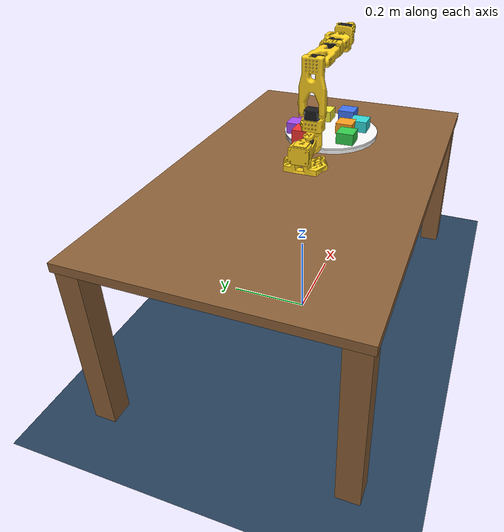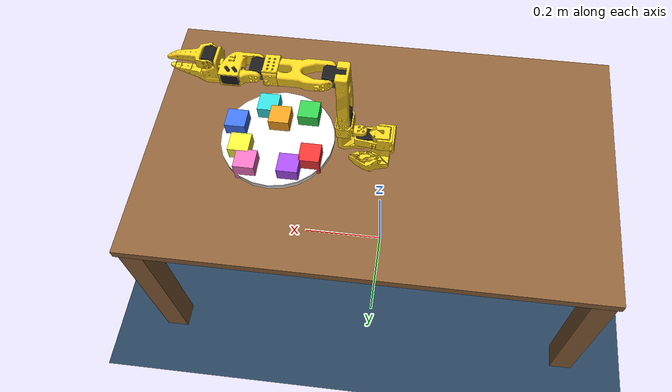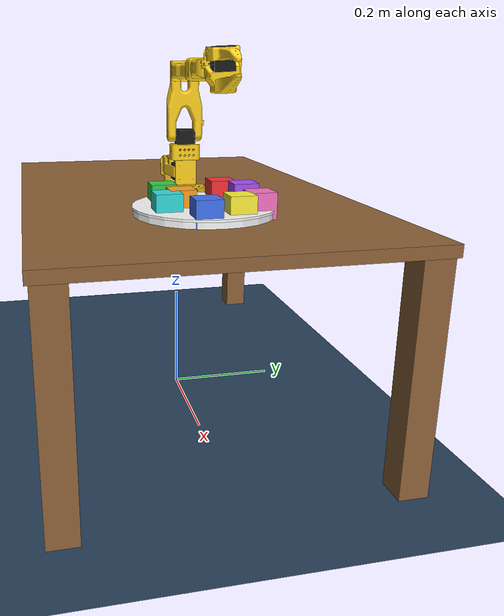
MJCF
<mujoco model="scene">
    <include file="so101.xml" />

    <visual>
        <headlight diffuse="0.6 0.6 0.6" ambient="0.3 0.3 0.3" specular="0 0 0" />
        <rgba haze="0.15 0.25 0.35 1" />
        <global azimuth="160" elevation="-20" />
    </visual>

    <asset>
        <texture type="skybox" builtin="gradient" rgb1="0.3 0.5 0.7" rgb2="0 0 0" width="512"
            height="3072" />
        <texture type="2d" name="groundplane" builtin="checker" mark="edge" rgb1="0.2 0.3 0.4"
            rgb2="0.1 0.2 0.3"
            markrgb="0.8 0.8 0.8" width="300" height="300" />

        <material name="groundplane" texture="groundplane" texuniform="true" texrepeat="5 5" reflectance="0.2" />

        <!-- 桌子、盘子材质 -->
        <material name="table_wood" rgba="0.55 0.38 0.22 1" reflectance="0.1"/>
        <material name="plate_white" rgba="0.98 0.98 0.98 1" reflectance="0.3"/>

        <!-- 各种颜色的小方块材质 -->
        <material name="cube_red"    rgba="0.95 0.20 0.20 1"/>
        <material name="cube_orange" rgba="0.98 0.62 0.12 1"/>
        <material name="cube_yellow" rgba="0.98 0.94 0.22 1"/>
        <material name="cube_green"  rgba="0.20 0.80 0.30 1"/>
        <material name="cube_cyan"   rgba="0.20 0.85 0.85 1"/>
        <material name="cube_blue"   rgba="0.25 0.45 0.95 1"/>
        <material name="cube_purple" rgba="0.65 0.30 0.95 1"/>
        <material name="cube_pink"   rgba="0.95 0.45 0.75 1"/>
    </asset>

    <default>
        <geom friction="1.5 0.005 0.0001" />
    </default>

    <worldbody>
        <light pos="0 0 3.5" dir="0 0 -1" directional="true" />
        <geom name="floor" size="0 0 0.05" pos="0 0 0" type="plane" material="groundplane" />

        <!-- 桌子静态刚体 -->
        <body name="table_base" pos="0 0 0">
            <!-- 桌面：长1.0m 宽0.6m 厚0.02m，离地高度0.4m -->
            <geom type="box" name="table_top" pos="0 0 0.4" size="0.5 0.3 0.01" material="table_wood"/>
            <!-- 四条桌腿 -->
            <geom type="box" pos="-0.47 -0.27 0.2" size="0.025 0.025 0.2" material="table_wood"/>
            <geom type="box" pos="0.47 -0.27 0.2" size="0.025 0.025 0.2" material="table_wood"/>
            <geom type="box" pos="-0.47 0.27 0.2" size="0.025 0.025 0.2" material="table_wood"/>
            <geom type="box" pos="0.47 0.27 0.2" size="0.025 0.025 0.2" material="table_wood"/>
        </body>

        <!-- 白色圆形盘子放在桌面右侧 -->
        <body name="plate_body" pos="0.22 0 0.415">
            <geom type="cylinder" size="0.12 0.006" material="plate_white"/>
            <geom type="cylinder" size="0.122 0.002" pos="0 0 0.008" material="plate_white"/>
        </body>

        <!-- 各种颜色的小方块（可自由移动，散布在桌面上） -->
        <body name="cube_red" pos="0.14 0.05 0.432">
            <freejoint/>
            <geom type="box" size="0.022 0.022 0.022" material="cube_red"/>
        </body>
        <body name="cube_orange" pos="0.22 -0.04 0.432">
            <freejoint/>
            <geom type="box" size="0.022 0.022 0.022" material="cube_orange"/>
        </body>
        <body name="cube_yellow" pos="0.29 0.04 0.432">
            <freejoint/>
            <geom type="box" size="0.022 0.022 0.022" material="cube_yellow"/>
        </body>
        <body name="cube_green" pos="0.16 -0.06 0.432">
            <freejoint/>
            <geom type="box" size="0.022 0.022 0.022" material="cube_green"/>
        </body>
        <body name="cube_cyan" pos="0.25 -0.07 0.432">
            <freejoint/>
            <geom type="box" size="0.022 0.022 0.022" material="cube_cyan"/>
        </body>
        <body name="cube_blue" pos="0.31 -0.02 0.432">
            <freejoint/>
            <geom type="box" size="0.022 0.022 0.022" material="cube_blue"/>
        </body>
        <body name="cube_purple" pos="0.18 0.08 0.432">
            <freejoint/>
            <geom type="box" size="0.022 0.022 0.022" material="cube_purple"/>
        </body>
        <body name="cube_pink" pos="0.27 0.08 0.432">
            <freejoint/>
            <geom type="box" size="0.022 0.022 0.022" material="cube_pink"/>
        </body>

        <!-- 俯视相机：位于工作区正上方，朝 -Z 俯视桌面 -->
        <camera name="overhead" pos="0.20 0.0 1.0" mode="fixed" fovy="50" quat="1 0 0 0"/>
    </worldbody>
</mujoco>

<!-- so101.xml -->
<!-- Generated using onshape-to-robot -->
<!-- Onshape https://cad.onshape.com/documents/7715cc284bb430fe6dab4ffd/w/4fd0791b683777b02f8d975a/e/826c553ede3b7592eb9ca800 -->
<mujoco model="so101_new_calib">
  <compiler angle="radian" meshdir="assets" autolimits="true"/>
  <default>
    <default class="so101_new_calib">
      <joint damping="1" frictionloss="0.1" armature="0.005"/>
      <position kp="50"/>
      <default class="visual">
        <geom type="mesh" contype="0" conaffinity="0" group="2"/>
      </default>
      <default class="collision">
        <geom group="3"/>
      </default>
    </default>
  </default>
  <!-- Additional joints_properties.xml -->
  <default>
    <default class="sts3215">
      <geom contype="0" conaffinity="0"/>
      <joint damping="0.60" frictionloss="0.052" armature="0.028"/>
      <position kp="998.22" kv="2.731" forcerange="-2.94 2.94"/>
    </default>
    <default class="backlash">
      <!-- +/- 0.5° of backlash -->
      <joint damping="0.01" frictionloss="0" armature="0.01" limited="true" range="-0.008726646259971648 0.008726646259971648"/>
    </default>
  </default>
  <worldbody>
    <!-- Link base -->
    <body name="base" pos="0 0 0.41" quat="1 0 0 0" childclass="so101_new_calib">
      <inertial pos="0.0137179 -5.19711e-05 0.0334843" mass="0.147" fullinertia="0.000114686 0.000136117 0.000130364 -4.59787e-07 4.97151e-06 9.75275e-08"/>
      <!-- Part base_motor_holder_so101_v1 -->
      <geom type="mesh" class="visual" pos="-0.00636471 -9.94414e-05 -0.0024" quat="0.5 0.5 0.5 0.5" mesh="base_motor_holder_so101_v1" material="base_motor_holder_so101_v1_material"/>
      <!-- Part base_so101_v2 -->
      <geom type="mesh" class="visual" pos="-0.00636471 -8.97657e-09 -0.0024" quat="0.5 0.5 0.5 0.5" mesh="base_so101_v2" material="base_so101_v2_material"/>
      <!-- Part sts3215_03a_v1 -->
      <geom type="mesh" class="visual" pos="0.0263353 -8.97657e-09 0.0437" quat="1 -2.85511e-16 -9.64433e-17 6.12908e-16" mesh="sts3215_03a_v1" material="sts3215_03a_v1_material"/>
      <!-- Part waveshare_mounting_plate_so101_v2 -->
      <geom type="mesh" class="visual" pos="-0.0309827 -0.000199441 0.0474" quat="0.5 0.5 0.5 0.5" mesh="waveshare_mounting_plate_so101_v2" material="waveshare_mounting_plate_so101_v2_material"/>
      <!-- Frame baseframe -->
      <site group="3" name="baseframe" pos="8.67362e-19 9.55596e-18 3.46945e-18" quat="1 -8.17396e-19 3.78392e-17 2.22045e-16"/>
      <!-- Link shoulder -->
      <body name="shoulder" pos="0.0388353 -8.97657e-09 0.0624" quat="3.56167e-16 1.22818e-15 -1 -4.14635e-16">
        <!-- Joint from base to shoulder -->
        <joint axis="0 0 1" name="shoulder_pan" type="hinge" range="-1.9198621771937616 1.9198621771937634" class="sts3215"/>
        <inertial pos="-0.0307604 -1.66727e-05 -0.0252713" mass="0.100006" fullinertia="8.3759e-05 8.10403e-05 2.39783e-05 7.55525e-08 -1.16342e-06 1.54663e-07"/>
        <!-- Part sts3215_03a_v1_2 -->
        <geom type="mesh" class="visual" pos="-0.0303992 0.000422241 -0.0417" quat="0.5 0.5 0.5 -0.5" mesh="sts3215_03a_v1" material="sts3215_03a_v1_material"/>
        <geom type="mesh" class="collision" pos="-0.0303992 0.000422241 -0.0417" quat="0.5 0.5 0.5 -0.5" mesh="sts3215_03a_v1" material="sts3215_03a_v1_material"/>
        <!-- Part motor_holder_so101_base_v1 -->
        <geom type="mesh" class="visual" pos="-0.0675992 -0.000177759 0.0158499" quat="0.5 0.5 -0.5 0.5" mesh="motor_holder_so101_base_v1" material="motor_holder_so101_base_v1_material"/>
        <geom type="mesh" class="collision" pos="-0.0675992 -0.000177759 0.0158499" quat="0.5 0.5 -0.5 0.5" mesh="motor_holder_so101_base_v1" material="motor_holder_so101_base_v1_material"/>
        <!-- Part rotation_pitch_so101_v1 -->
        <geom type="mesh" class="visual" pos="0.0122008 2.22413e-05 0.0464" quat="0.707107 -0.707107 -0 8.3163e-34" mesh="rotation_pitch_so101_v1" material="rotation_pitch_so101_v1_material"/>
        <geom type="mesh" class="collision" pos="0.0122008 2.22413e-05 0.0464" quat="0.707107 -0.707107 -0 8.3163e-34" mesh="rotation_pitch_so101_v1" material="rotation_pitch_so101_v1_material"/>
        <!-- Link upper_arm -->
        <body name="upper_arm" pos="-0.0303992 -0.0182778 -0.0542" quat="0.5 -0.5 -0.5 -0.5">
          <!-- Joint from shoulder to upper_arm -->
          <joint axis="0 0 1" name="shoulder_lift" type="hinge" range="-1.7453292519943224 1.7453292519943366" class="sts3215"/>
          <inertial pos="-0.0898471 -0.00838224 0.0184089" mass="0.103" fullinertia="4.08002e-05 0.000147318 0.000142487 -1.97819e-05 -4.03016e-08 8.97326e-09"/>
          <!-- Part sts3215_03a_v1_3 -->
          <geom type="mesh" class="visual" pos="-0.11257 -0.0155 0.0187" quat="4.56308e-16 -0.707107 0.707107 -1.37383e-16" mesh="sts3215_03a_v1" material="sts3215_03a_v1_material"/>
          <geom type="mesh" class="collision" pos="-0.11257 -0.0155 0.0187" quat="4.56308e-16 -0.707107 0.707107 -1.37383e-16" mesh="sts3215_03a_v1" material="sts3215_03a_v1_material"/>
          <!-- Part upper_arm_so101_v1 -->
          <geom type="mesh" class="visual" pos="-0.065085 0.012 0.0182" quat="0 1 0 0" mesh="upper_arm_so101_v1" material="upper_arm_so101_v1_material"/>
          <geom type="mesh" class="collision" pos="-0.065085 0.012 0.0182" quat="0 1 0 0" mesh="upper_arm_so101_v1" material="upper_arm_so101_v1_material"/>
          <!-- Link lower_arm -->
          <body name="lower_arm" pos="-0.11257 -0.028 1.73763e-16" quat="0.707107 -5.98613e-17 -2.58051e-17 0.707107">
            <!-- Joint from upper_arm to lower_arm -->
            <!-- Note: 5-degree calibration offset applied to joint range -->
            <joint axis="0 0 1" name="elbow_flex" type="hinge" range="-1.69 1.69" class="sts3215"/>
            <inertial pos="-0.0980701 0.00324376 0.0182831" mass="0.104" fullinertia="2.87438e-05 0.000159844 0.00014529 7.41152e-06 1.26409e-06 -4.90188e-08"/>
            <!-- Part under_arm_so101_v1 -->
            <geom type="mesh" class="visual" pos="-0.0648499 -0.032 0.0182" quat="0 1 0 0" mesh="under_arm_so101_v1" material="under_arm_so101_v1_material"/>
            <geom type="mesh" class="collision" pos="-0.0648499 -0.032 0.0182" quat="0 1 0 0" mesh="under_arm_so101_v1" material="under_arm_so101_v1_material"/>
            <!-- Part motor_holder_so101_wrist_v1 -->
            <geom type="mesh" class="visual" pos="-0.0648499 -0.032 0.018" quat="3.92687e-16 -1 -1.9186e-15 -6.38378e-16" mesh="motor_holder_so101_wrist_v1" material="motor_holder_so101_wrist_v1_material"/>
            <geom type="mesh" class="collision" pos="-0.0648499 -0.032 0.018" quat="3.92687e-16 -1 -1.9186e-15 -6.38378e-16" mesh="motor_holder_so101_wrist_v1" material="motor_holder_so101_wrist_v1_material"/>
            <!-- Part sts3215_03a_v1_4 -->
            <geom type="mesh" class="visual" pos="-0.1224 0.0052 0.0187" quat="7.21645e-16 1.56949e-15 1 -3.33067e-16" mesh="sts3215_03a_v1" material="sts3215_03a_v1_material"/>
            <geom type="mesh" class="collision" pos="-0.1224 0.0052 0.0187" quat="7.21645e-16 1.56949e-15 1 -3.33067e-16" mesh="sts3215_03a_v1" material="sts3215_03a_v1_material"/>
            <!-- Link wrist -->
            <body name="wrist" pos="-0.1349 0.0052 3.62355e-17" quat="0.707107 9.58722e-16 -7.51313e-16 -0.707107">
              <!-- Joint from lower_arm to wrist -->
              <joint axis="0 0 1" name="wrist_flex" type="hinge" range="-1.6580628494556928 1.6580627293335335" class="sts3215"/>
              <inertial pos="-0.000103312 -0.0386143 0.0281156" mass="0.079" fullinertia="3.68263e-05 2.5391e-05 2.1e-05 1.7893e-08 -5.28128e-08 3.6412e-06"/>
              <!-- Part sts3215_03a_no_horn_v1 -->
              <geom type="mesh" class="visual" pos="8.32667e-17 -0.0424 0.0306" quat="0.5 0.5 0.5 -0.5" mesh="sts3215_03a_no_horn_v1" material="sts3215_03a_no_horn_v1_material"/>
              <geom type="mesh" class="collision" pos="8.32667e-17 -0.0424 0.0306" quat="0.5 0.5 0.5 -0.5" mesh="sts3215_03a_no_horn_v1" material="sts3215_03a_no_horn_v1_material"/>
              <!-- Part wrist_roll_pitch_so101_v2 -->
              <geom type="mesh" class="visual" pos="0 -0.028 0.0181" quat="0.5 -0.5 -0.5 -0.5" mesh="wrist_roll_pitch_so101_v2" material="wrist_roll_pitch_so101_v2_material"/>
              <geom type="mesh" class="collision" pos="0 -0.028 0.0181" quat="0.5 -0.5 -0.5 -0.5" mesh="wrist_roll_pitch_so101_v2" material="wrist_roll_pitch_so101_v2_material"/>
              <!-- Link gripper -->
              <body name="gripper" pos="5.55112e-17 -0.0611 0.0181" quat="0.0172091 -0.0172091 0.706897 0.706897">
                <!-- Joint from wrist to gripper -->
                <joint axis="0 0 1" name="wrist_roll" type="hinge" range="-2.7438472969992493 2.841206309382605" class="sts3215"/>
                <inertial pos="0.000213627 0.000245138 -0.025187" mass="0.087" fullinertia="2.75087e-05 4.33657e-05 3.45059e-05 -3.35241e-07 -5.7352e-06 -5.17847e-08"/>
                <!-- Part sts3215_03a_v1_5 -->
                <geom type="mesh" class="visual" pos="0.0077 0.0001 -0.0234" quat="0.707107 -0.707107 1.66015e-15 6.45094e-15" mesh="sts3215_03a_v1" material="sts3215_03a_v1_material"/>
                <geom type="mesh" class="collision" pos="0.0077 0.0001 -0.0234" quat="0.707107 -0.707107 1.66015e-15 6.45094e-15" mesh="sts3215_03a_v1" material="sts3215_03a_v1_material"/>
                <!-- Part wrist_roll_follower_so101_v1 -->
                <geom type="mesh" class="visual" pos="8.32667e-17 -0.000218214 0.000949706" quat="0 1 0 0" mesh="wrist_roll_follower_so101_v1" material="wrist_roll_follower_so101_v1_material"/>
                <geom type="mesh" class="collision" pos="8.32667e-17 -0.000218214 0.000949706" quat="0 1 0 0" mesh="wrist_roll_follower_so101_v1" material="wrist_roll_follower_so101_v1_material"/>
                <!-- 腕部相机：安装在夹爪本体上方，朝夹爪张开方向俯视抓取区 -->
                <camera name="wrist" pos="0 0.025 -0.03" mode="fixed" fovy="70" quat="1 0 0 0"/>
                <!-- Frame gripperframe -->
                <site group="3" name="gripperframe" pos="-0.0079 -0.000218121 -0.0981274" quat="0.707107 -0 0.707107 -2.37788e-17"/>
                <!-- Link moving_jaw_so101_v1 -->
                <body name="moving_jaw_so101_v1" pos="0.0202 0.0188 -0.0234" quat="0.707107 0.707107 -1.85362e-08 1.85362e-08">
                  <!-- Joint from gripper to moving_jaw_so101_v1 -->
                  <joint axis="0 0 1" name="gripper" type="hinge" range="-0.17453297762778586 1.7453291995659765" class="sts3215"/>
                  <inertial pos="-0.00157495 -0.0300244 0.0192755" mass="0.012" fullinertia="6.61427e-06 1.89032e-06 5.28738e-06 -3.19807e-07 -5.90717e-09 -1.09945e-07"/>
                  <!-- Part moving_jaw_so101_v1 -->
                  <geom type="mesh" class="visual" pos="-5.55112e-17 -5.55112e-17 0.0189" quat="1 -0 3.00524e-16 -2.00834e-17" mesh="moving_jaw_so101_v1" material="moving_jaw_so101_v1_material"/>
                  <geom type="mesh" class="collision" pos="-5.55112e-17 -5.55112e-17 0.0189" quat="1 -0 3.00524e-16 -2.00834e-17" mesh="moving_jaw_so101_v1" material="moving_jaw_so101_v1_material"/>
                </body>
              </body>
            </body>
          </body>
        </body>
      </body>
    </body>
  </worldbody>
  <asset>
    <mesh file="waveshare_mounting_plate_so101_v2.stl"/>
    <mesh file="sts3215_03a_v1.stl"/>
    <mesh file="motor_holder_so101_base_v1.stl"/>
    <mesh file="wrist_roll_follower_so101_v1.stl"/>
    <mesh file="moving_jaw_so101_v1.stl"/>
    <mesh file="base_motor_holder_so101_v1.stl"/>
    <mesh file="upper_arm_so101_v1.stl"/>
    <mesh file="wrist_roll_pitch_so101_v2.stl"/>
    <mesh file="under_arm_so101_v1.stl"/>
    <mesh file="rotation_pitch_so101_v1.stl"/>
    <mesh file="motor_holder_so101_wrist_v1.stl"/>
    <mesh file="sts3215_03a_no_horn_v1.stl"/>
    <mesh file="base_so101_v2.stl"/>
    <material name="base_motor_holder_so101_v1_material" rgba="1 0.82 0.12 1"/>
    <material name="base_so101_v2_material" rgba="1 0.82 0.12 1"/>
    <material name="sts3215_03a_v1_material" rgba="0.1 0.1 0.1 1"/>
    <material name="waveshare_mounting_plate_so101_v2_material" rgba="1 0.82 0.12 1"/>
    <material name="motor_holder_so101_base_v1_material" rgba="1 0.82 0.12 1"/>
    <material name="rotation_pitch_so101_v1_material" rgba="1 0.82 0.12 1"/>
    <material name="upper_arm_so101_v1_material" rgba="1 0.82 0.12 1"/>
    <material name="under_arm_so101_v1_material" rgba="1 0.82 0.12 1"/>
    <material name="motor_holder_so101_wrist_v1_material" rgba="1 0.82 0.12 1"/>
    <material name="sts3215_03a_no_horn_v1_material" rgba="0.1 0.1 0.1 1.0"/>
    <material name="wrist_roll_pitch_so101_v2_material" rgba="1 0.82 0.12 1"/>
    <material name="wrist_roll_follower_so101_v1_material" rgba="1 0.82 0.12 1"/>
    <material name="moving_jaw_so101_v1_material" rgba="1 0.82 0.12 1"/>
  </asset>
  <actuator>
    <position class="sts3215" name="shoulder_pan" joint="shoulder_pan" forcerange="-3.35 3.35" ctrlrange="-1.91986 1.91986"/>
    <position class="sts3215" name="shoulder_lift" joint="shoulder_lift" forcerange="-3.35 3.35" ctrlrange="-1.74533 1.74533"/>
    <position class="sts3215" name="elbow_flex" joint="elbow_flex" forcerange="-3.35 3.35" ctrlrange="-1.69 1.69"/>
    <position class="sts3215" name="wrist_flex" joint="wrist_flex" forcerange="-3.35 3.35" ctrlrange="-1.65806 1.65806"/>
    <position class="sts3215" name="wrist_roll" joint="wrist_roll" forcerange="-3.35 3.35" ctrlrange="-2.74385 2.84121"/>
    <position class="sts3215" name="gripper" joint="gripper" forcerange="-3.35 3.35" ctrlrange="-0.17453 1.74533"/>
  </actuator>
  <equality/>
</mujoco>
